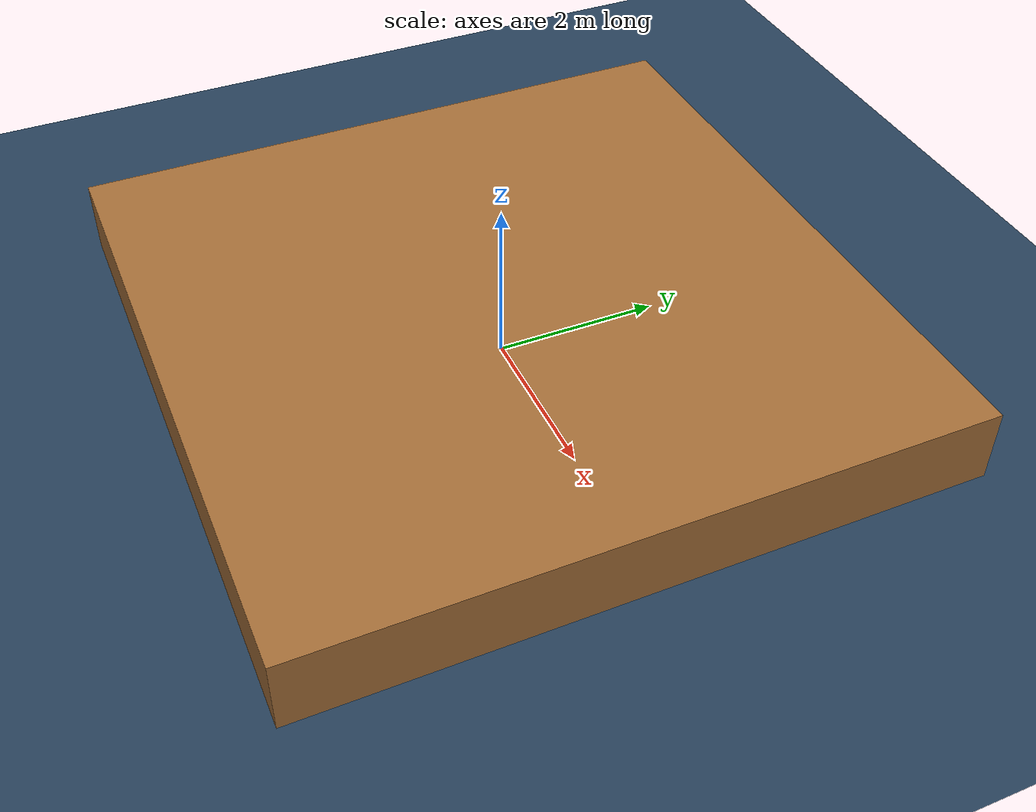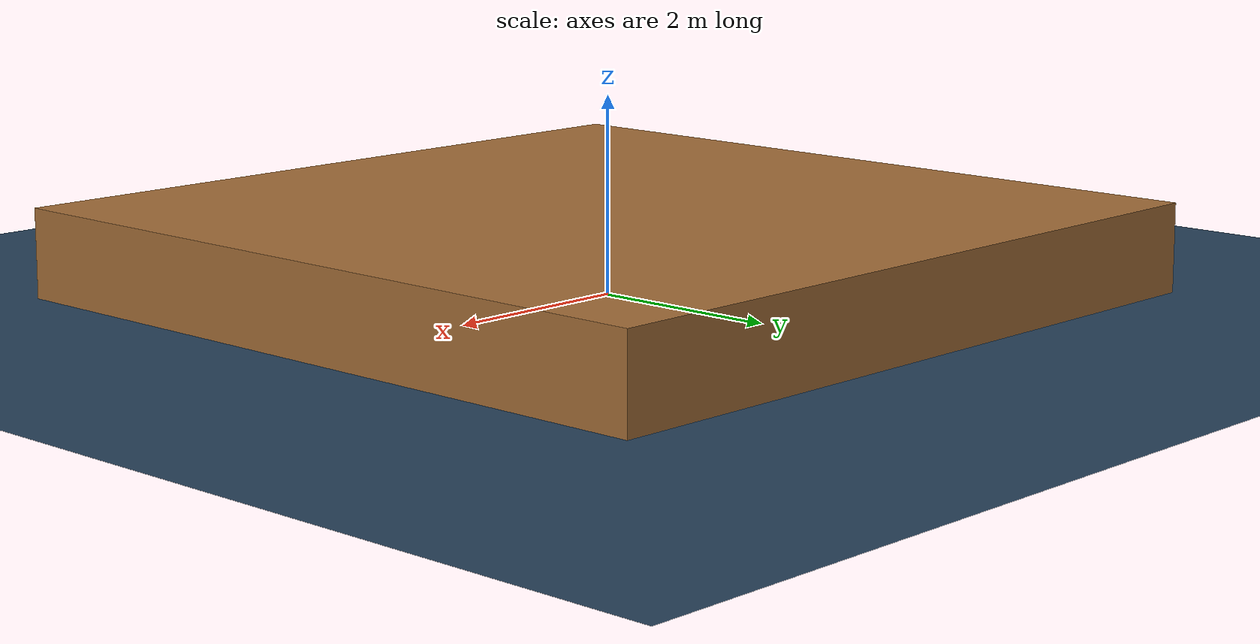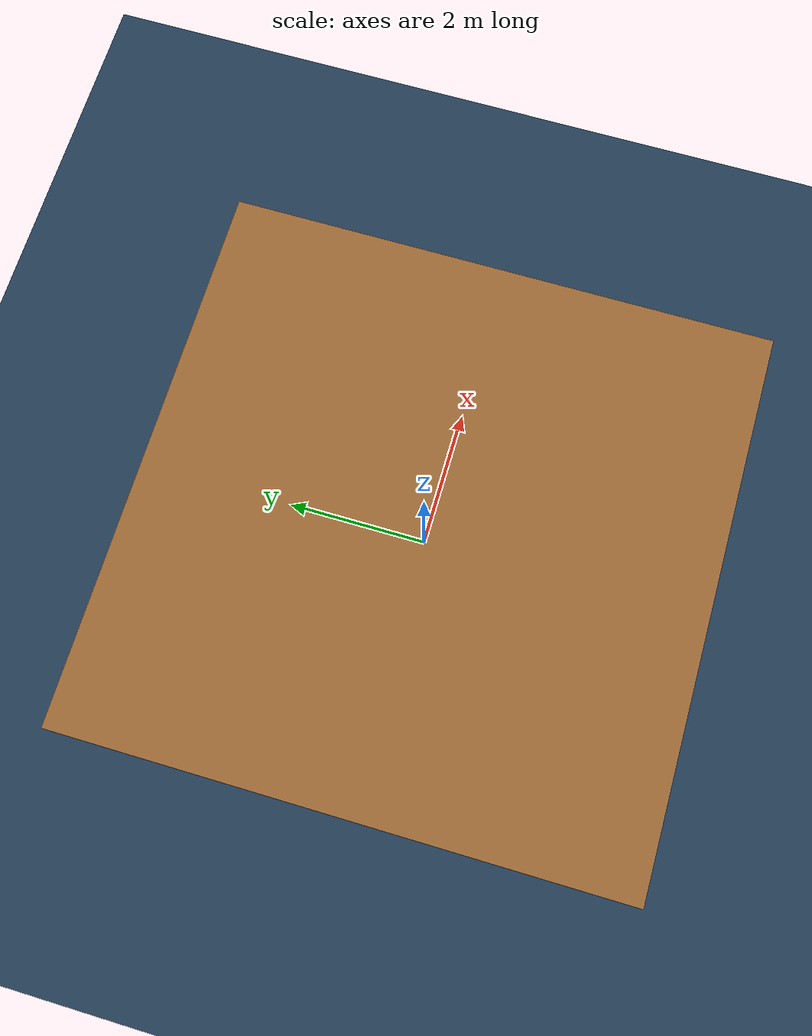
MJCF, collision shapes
<mujoco model="go2 scene">
  <include file="go2_mjx.xml"/>

  <statistic center="0 0 0.1" extent="0.8"/>

  <visual>
    <headlight diffuse="0.6 0.6 0.6" ambient="0.3 0.3 0.3" specular="0 0 0"/>
    <rgba haze="0.15 0.25 0.35 1"/>
    <global azimuth="-130" elevation="-20"/>
  </visual>

  <asset>
    <texture type="skybox" builtin="gradient" rgb1="0.3 0.5 0.7" rgb2="0 0 0" width="512" height="3072"/>
    <texture type="2d" name="groundplane" builtin="checker" mark="edge" rgb1="0.2 0.3 0.4" rgb2="0.1 0.2 0.3"
      markrgb="0.8 0.8 0.8" width="300" height="300"/>
    <material name="groundplane" texture="groundplane" texuniform="true" texrepeat="5 5" reflectance="0.2"/>
    <texture type="2d" name="pyramid" builtin="checker" mark="cross" rgb1="0.76 0.52 0.28" rgb2="0.52 0.34 0.16"
      markrgb="0.32 0.20 0.10" width="300" height="300"/>
    <material name="pyramid" texture="pyramid" texuniform="true" texrepeat="3 3" reflectance="0.05"/>
  </asset>

  <worldbody>
    <light pos="0 0 1.5" dir="0 0 -1" directional="true"/>
    <geom name="floor" size="0 0 0.05" type="plane" material="groundplane" friction="2.0 0.005 0.0001"/>
    <body name="pyr_00" pos="0 0 0.4">
      <inertial pos="0 0 0" mass="0.001" diaginertia="0.001 0.001 0.001"/>
      <geom name="pyr_00" type="box" size="4 4 0.5" material="pyramid" friction="2.0 0.005 0.0001"/>
    </body>
    <body name="pyr_01" pos="0 0 0.4">
      <inertial pos="0 0 0" mass="0.001" diaginertia="0.001 0.001 0.001"/>
      <geom name="pyr_01" type="box" size="4 4 0.5" material="pyramid" friction="2.0 0.005 0.0001"/>
    </body>
    <body name="pyr_02" pos="0 0 0.4">
      <inertial pos="0 0 0" mass="0.001" diaginertia="0.001 0.001 0.001"/>
      <geom name="pyr_02" type="box" size="4 4 0.5" material="pyramid" friction="2.0 0.005 0.0001"/>
    </body>
    <body name="pyr_03" pos="0 0 0.4">
      <inertial pos="0 0 0" mass="0.001" diaginertia="0.001 0.001 0.001"/>
      <geom name="pyr_03" type="box" size="4 4 0.5" material="pyramid" friction="2.0 0.005 0.0001"/>
    </body>
    <body name="pyr_04" pos="0 0 0.4">
      <inertial pos="0 0 0" mass="0.001" diaginertia="0.001 0.001 0.001"/>
      <geom name="pyr_04" type="box" size="4 4 0.5" material="pyramid" friction="2.0 0.005 0.0001"/>
    </body>
    <body name="pyr_05" pos="0 0 0.4">
      <inertial pos="0 0 0" mass="0.001" diaginertia="0.001 0.001 0.001"/>
      <geom name="pyr_05" type="box" size="4 4 0.5" material="pyramid" friction="2.0 0.005 0.0001"/>
    </body>
    <body name="pyr_06" pos="0 0 0.4">
      <inertial pos="0 0 0" mass="0.001" diaginertia="0.001 0.001 0.001"/>
      <geom name="pyr_06" type="box" size="4 4 0.5" material="pyramid" friction="2.0 0.005 0.0001"/>
    </body>
    <body name="pyr_07" pos="0 0 0.4">
      <inertial pos="0 0 0" mass="0.001" diaginertia="0.001 0.001 0.001"/>
      <geom name="pyr_07" type="box" size="4 4 0.5" material="pyramid" friction="2.0 0.005 0.0001"/>
    </body>
    <body name="pyr_08" pos="0 0 0.4">
      <inertial pos="0 0 0" mass="0.001" diaginertia="0.001 0.001 0.001"/>
      <geom name="pyr_08" type="box" size="4 4 0.5" material="pyramid" friction="2.0 0.005 0.0001"/>
    </body>
    <body name="pyr_09" pos="0 0 0.4">
      <inertial pos="0 0 0" mass="0.001" diaginertia="0.001 0.001 0.001"/>
      <geom name="pyr_09" type="box" size="4 4 0.5" material="pyramid" friction="2.0 0.005 0.0001"/>
    </body>
    <body name="pyr_10" pos="0 0 0.4">
      <inertial pos="0 0 0" mass="0.001" diaginertia="0.001 0.001 0.001"/>
      <geom name="pyr_10" type="box" size="4 4 0.5" material="pyramid" friction="2.0 0.005 0.0001"/>
    </body>
    <body name="pyr_11" pos="0 0 0.4">
      <inertial pos="0 0 0" mass="0.001" diaginertia="0.001 0.001 0.001"/>
      <geom name="pyr_11" type="box" size="4 4 0.5" material="pyramid" friction="2.0 0.005 0.0001"/>
    </body>
    <body name="pyr_12" pos="0 0 0.4">
      <inertial pos="0 0 0" mass="0.001" diaginertia="0.001 0.001 0.001"/>
      <geom name="pyr_12" type="box" size="4 4 0.5" material="pyramid" friction="2.0 0.005 0.0001"/>
    </body>
    <body name="pyr_13" pos="0 0 0.4">
      <inertial pos="0 0 0" mass="0.001" diaginertia="0.001 0.001 0.001"/>
      <geom name="pyr_13" type="box" size="4 4 0.5" material="pyramid" friction="2.0 0.005 0.0001"/>
    </body>
    <body name="pyr_14" pos="0 0 0.4">
      <inertial pos="0 0 0" mass="0.001" diaginertia="0.001 0.001 0.001"/>
      <geom name="pyr_14" type="box" size="4 4 0.5" material="pyramid" friction="2.0 0.005 0.0001"/>
    </body>
    <body name="pyr_15" pos="0 0 0.4">
      <inertial pos="0 0 0" mass="0.001" diaginertia="0.001 0.001 0.001"/>
      <geom name="pyr_15" type="box" size="4 4 0.5" material="pyramid" friction="2.0 0.005 0.0001"/>
    </body>
    <body name="pyr_16" pos="0 0 0.4">
      <inertial pos="0 0 0" mass="0.001" diaginertia="0.001 0.001 0.001"/>
      <geom name="pyr_16" type="box" size="4 4 0.5" material="pyramid" friction="2.0 0.005 0.0001"/>
    </body>
    <body name="pyr_17" pos="0 0 0.4">
      <inertial pos="0 0 0" mass="0.001" diaginertia="0.001 0.001 0.001"/>
      <geom name="pyr_17" type="box" size="4 4 0.5" material="pyramid" friction="2.0 0.005 0.0001"/>
    </body>
    <body name="pyr_18" pos="0 0 0.4">
      <inertial pos="0 0 0" mass="0.001" diaginertia="0.001 0.001 0.001"/>
      <geom name="pyr_18" type="box" size="4 4 0.5" material="pyramid" friction="2.0 0.005 0.0001"/>
    </body>
    <body name="pyr_19" pos="0 0 0.4">
      <inertial pos="0 0 0" mass="0.001" diaginertia="0.001 0.001 0.001"/>
      <geom name="pyr_19" type="box" size="4 4 0.5" material="pyramid" friction="2.0 0.005 0.0001"/>
    </body>
    <body name="pyr_20" pos="0 0 0.4">
      <inertial pos="0 0 0" mass="0.001" diaginertia="0.001 0.001 0.001"/>
      <geom name="pyr_20" type="box" size="4 4 0.5" material="pyramid" friction="2.0 0.005 0.0001"/>
    </body>
    <body name="pyr_21" pos="0 0 0.4">
      <inertial pos="0 0 0" mass="0.001" diaginertia="0.001 0.001 0.001"/>
      <geom name="pyr_21" type="box" size="4 4 0.5" material="pyramid" friction="2.0 0.005 0.0001"/>
    </body>
    <body name="pyr_22" pos="0 0 0.4">
      <inertial pos="0 0 0" mass="0.001" diaginertia="0.001 0.001 0.001"/>
      <geom name="pyr_22" type="box" size="4 4 0.5" material="pyramid" friction="2.0 0.005 0.0001"/>
    </body>
    <body name="pyr_23" pos="0 0 0.4">
      <inertial pos="0 0 0" mass="0.001" diaginertia="0.001 0.001 0.001"/>
      <geom name="pyr_23" type="box" size="4 4 0.5" material="pyramid" friction="2.0 0.005 0.0001"/>
    </body>
  </worldbody>
</mujoco>

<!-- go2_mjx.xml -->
<mujoco model="go2">
  <compiler angle="radian" meshdir="assets" autolimits="true"/>

  <option cone="pyramidal" impratio="100" iterations="50" ls_iterations="10">
    <flag eulerdamp="disable"/>
  </option>

  <default>
    <default class="go2">
      <geom friction="0.6" margin="0.001" condim="3"/>
      <joint axis="0 1 0" damping="2" armature="0.01"
             solreflimit="0.004 1" solimplimit="0.98 0.9999 0.0005 0.5 2"/>
      <!-- Unitree Go2 datasheet limits. ctrlrange bounds the command;
           forcerange bounds the force MuJoCo actually applies. -->
      <motor ctrlrange="-23.7 23.7" forcerange="-23.7 23.7"/>

      <default class="abduction">
        <joint axis="1 0 0" range="-1.0472 1.0472"/>
      </default>
      <default class="hip">
        <joint range="-1.5708 3.4907"/>
      </default>
      <default class="knee">
        <joint range="-2.7227 -0.83776"/>
        <motor ctrlrange="-45.43 45.43" forcerange="-45.43 45.43"/>
      </default>
      <default class="visual">
        <geom type="mesh" contype="0" conaffinity="0" group="2"/>
      </default>
      <default class="go2foot">
        <site group="1" pos="-0.002 0 -0.213"/>
        <geom rgba="0.231373 0.380392 0.705882 1"/>
      </default>
      <default class="collision">
        <geom group="3"/>
        <default class="foot">
          <geom size="0.0175" pos="-0.002 0 -0.213" priority="1" solref="0.01 1" solimp="0.9 0.95 0.001" condim="6"
            friction="1.2 0.02 0.01"/>
        </default>
      </default>
    </default>
  </default>

  <asset>
    <material name="metal" rgba=".9 .95 .95 1"/>
    <material name="black" rgba="0 0 0 1"/>
    <material name="white" rgba="1 1 1 1"/>
    <material name="gray" rgba="0.671705 0.692426 0.774270 1"/>

    <mesh file="base_0.obj"/>
    <mesh file="base_1.obj"/>
    <mesh file="base_2.obj"/>
    <mesh file="base_3.obj"/>
    <mesh file="base_4.obj"/>
    <mesh file="hip_0.obj"/>
    <mesh file="hip_1.obj"/>
    <mesh file="thigh_0.obj"/>
    <mesh file="thigh_1.obj"/>
    <mesh file="thigh_mirror_0.obj"/>
    <mesh file="thigh_mirror_1.obj"/>
    <mesh file="calf_0.obj"/>
    <mesh file="calf_1.obj"/>
    <mesh file="calf_mirror_0.obj"/>
    <mesh file="calf_mirror_1.obj"/>
    <mesh file="foot.obj"/>
  </asset>

  <worldbody>
    <body name="base" pos="0 0 0.445" childclass="go2">
      <camera name="track" pos="0.846 -1.465 0.916" xyaxes="0.866 0.500 0.000 -0.171 0.296 0.940" mode="trackcom"/>
      <inertial pos="0.021112 0 -0.005366" quat="-0.000543471 0.713435 -0.00173769 0.700719" mass="6.921"
        diaginertia="0.107027 0.0980771 0.0244531"/>
      <freejoint/>
      <geom mesh="base_0" material="black" class="visual"/>
      <geom mesh="base_1" material="black" class="visual"/>
      <geom mesh="base_2" material="black" class="visual"/>
      <geom mesh="base_3" material="white" class="visual"/>
      <geom mesh="base_4" material="gray" class="visual"/>
      <geom size="0.057 0.04675 0.057" class="collision"/>
      <geom size="0.05 0.045" pos="0.285 0 0.01" class="collision"/>
      <geom size="0.047" pos="0.293 0 -0.06" class="collision"/>
      <site name="imu" pos="-0.02557 0 0.04232"/>
      <body name="FL_hip" pos="0.1934 0.0465 0">
        <inertial pos="-0.0054 0.00194 -0.000105" quat="0.497014 0.499245 0.505462 0.498237" mass="0.678"
          diaginertia="0.00088403 0.000596003 0.000479967"/>
        <joint name="FL_hip_joint" class="abduction"/>
        <geom mesh="hip_0" material="metal" class="visual"/>
        <geom mesh="hip_1" material="gray" class="visual"/>
        <geom size="0.046 0.02" pos="0 0.08 0" quat="1 1 0 0" class="collision"/>
        <body name="FL_thigh" pos="0 0.0955 0">
          <inertial pos="-0.00374 -0.0223 -0.0327" quat="0.829533 0.0847635 -0.0200632 0.551623" mass="1.152"
            diaginertia="0.00594973 0.00584149 0.000878787"/>
          <joint name="FL_thigh_joint" class="hip"/>
          <geom mesh="thigh_0" material="metal" class="visual"/>
          <geom mesh="thigh_1" material="gray" class="visual"/>
          <geom size="0.017 0.01225 0.017" pos="-0.015 0 -0.1955" quat="0.707107 0 0.707107 0" class="collision"/>
          <body name="FL_calf" pos="0 0 -0.213">
            <inertial pos="0.00629595 -0.000622121 -0.141417" quat="0.710672 0.00154099 -0.00450087 0.703508"
              mass="0.241352" diaginertia="0.0014901 0.00146356 5.31397e-05"/>
            <joint name="FL_calf_joint" class="knee"/>
            <geom mesh="calf_0" material="gray" class="visual"/>
            <geom mesh="calf_1" material="black" class="visual"/>
            <geom size="0.012 0.06" pos="0.008 0 -0.06" quat="0.994493 0 -0.104807 0" class="collision"/>
            <geom size="0.011 0.0325" pos="0.02 0 -0.148" quat="0.999688 0 0.0249974 0" class="collision"/>
            <geom pos="0 0 -0.213" mesh="foot" class="visual" material="black"/>
            <geom name="FL" class="foot"/>
            <site name="FL_foot" class="go2foot"/>
          </body>
        </body>
      </body>
      <body name="FR_hip" pos="0.1934 -0.0465 0">
        <inertial pos="-0.0054 -0.00194 -0.000105" quat="0.498237 0.505462 0.499245 0.497014" mass="0.678"
          diaginertia="0.00088403 0.000596003 0.000479967"/>
        <joint name="FR_hip_joint" class="abduction"/>
        <geom mesh="hip_0" material="metal" class="visual" quat="4.63268e-05 1 0 0"/>
        <geom mesh="hip_1" material="gray" class="visual" quat="4.63268e-05 1 0 0"/>
        <geom size="0.046 0.02" pos="0 -0.08 0" quat="0.707107 0.707107 0 0" class="collision"/>
        <body name="FR_thigh" pos="0 -0.0955 0">
          <inertial pos="-0.00374 0.0223 -0.0327" quat="0.551623 -0.0200632 0.0847635 0.829533" mass="1.152"
            diaginertia="0.00594973 0.00584149 0.000878787"/>
          <joint name="FR_thigh_joint" class="hip"/>
          <geom mesh="thigh_mirror_0" material="metal" class="visual"/>
          <geom mesh="thigh_mirror_1" material="gray" class="visual"/>
          <geom size="0.017 0.01225 0.017" pos="-0.015 0 -0.1955" quat="0.707107 0 0.707107 0" class="collision"/>
          <body name="FR_calf" pos="0 0 -0.213">
            <inertial pos="0.00629595 0.000622121 -0.141417" quat="0.703508 -0.00450087 0.00154099 0.710672"
              mass="0.241352" diaginertia="0.0014901 0.00146356 5.31397e-05"/>
            <joint name="FR_calf_joint" class="knee"/>
            <geom mesh="calf_mirror_0" material="gray" class="visual"/>
            <geom mesh="calf_mirror_1" material="black" class="visual"/>
            <geom size="0.013 0.06" pos="0.01 0 -0.06" quat="0.995004 0 -0.0998334 0" class="collision"/>
            <geom size="0.011 0.0325" pos="0.02 0 -0.148" quat="0.999688 0 0.0249974 0" class="collision"/>
            <geom pos="0 0 -0.213" mesh="foot" class="visual" material="black"/>
            <geom name="FR" class="foot"/>
            <site name="FR_foot" class="go2foot"/>
          </body>
        </body>
      </body>
      <body name="RL_hip" pos="-0.1934 0.0465 0">
        <inertial pos="0.0054 0.00194 -0.000105" quat="0.505462 0.498237 0.497014 0.499245" mass="0.678"
          diaginertia="0.00088403 0.000596003 0.000479967"/>
        <joint name="RL_hip_joint" class="abduction"/>
        <geom mesh="hip_0" material="metal" class="visual" quat="4.63268e-05 0 1 0"/>
        <geom mesh="hip_1" material="gray" class="visual" quat="4.63268e-05 0 1 0"/>
        <geom size="0.046 0.02" pos="0 0.08 0" quat="0.707107 0.707107 0 0" class="collision"/>
        <body name="RL_thigh" pos="0 0.0955 0">
          <inertial pos="-0.00374 -0.0223 -0.0327" quat="0.829533 0.0847635 -0.0200632 0.551623" mass="1.152"
            diaginertia="0.00594973 0.00584149 0.000878787"/>
          <joint name="RL_thigh_joint" class="hip"/>
          <geom mesh="thigh_0" material="metal" class="visual"/>
          <geom mesh="thigh_1" material="gray" class="visual"/>
          <geom size="0.017 0.01225 0.017" pos="-0.015 0 -0.1955" quat="0.707107 0 0.707107 0" class="collision"/>
          <body name="RL_calf" pos="0 0 -0.213">
            <inertial pos="0.00629595 -0.000622121 -0.141417" quat="0.710672 0.00154099 -0.00450087 0.703508"
              mass="0.241352" diaginertia="0.0014901 0.00146356 5.31397e-05"/>
            <joint name="RL_calf_joint" class="knee"/>
            <geom mesh="calf_0" material="gray" class="visual"/>
            <geom mesh="calf_1" material="black" class="visual"/>
            <geom size="0.013 0.06" pos="0.01 0 -0.06" quat="0.995004 0 -0.0998334 0" class="collision"/>
            <geom size="0.011 0.0325" pos="0.02 0 -0.148" quat="0.999688 0 0.0249974 0" class="collision"/>
            <geom pos="0 0 -0.213" mesh="foot" class="visual" material="black"/>
            <geom name="RL" class="foot"/>
            <site name="RL_foot" class="go2foot"/>
          </body>
        </body>
      </body>
      <body name="RR_hip" pos="-0.1934 -0.0465 0">
        <inertial pos="0.0054 -0.00194 -0.000105" quat="0.499245 0.497014 0.498237 0.505462" mass="0.678"
          diaginertia="0.00088403 0.000596003 0.000479967"/>
        <joint name="RR_hip_joint" class="abduction"/>
        <geom mesh="hip_0" material="metal" class="visual" quat="2.14617e-09 4.63268e-05 4.63268e-05 -1"/>
        <geom mesh="hip_1" material="gray" class="visual" quat="2.14617e-09 4.63268e-05 4.63268e-05 -1"/>
        <geom size="0.046 0.02" pos="0 -0.08 0" quat="0.707107 0.707107 0 0" class="collision"/>
        <body name="RR_thigh" pos="0 -0.0955 0">
          <inertial pos="-0.00374 0.0223 -0.0327" quat="0.551623 -0.0200632 0.0847635 0.829533" mass="1.152"
            diaginertia="0.00594973 0.00584149 0.000878787"/>
          <joint name="RR_thigh_joint" class="hip"/>
          <geom mesh="thigh_mirror_0" material="metal" class="visual"/>
          <geom mesh="thigh_mirror_1" material="gray" class="visual"/>
          <geom size="0.017 0.01225 0.017" pos="-0.015 0 -0.1955" quat="0.707107 0 0.707107 0" class="collision"/>
          <body name="RR_calf" pos="0 0 -0.213">
            <inertial pos="0.00629595 0.000622121 -0.141417" quat="0.703508 -0.00450087 0.00154099 0.710672"
              mass="0.241352" diaginertia="0.0014901 0.00146356 5.31397e-05"/>
            <joint name="RR_calf_joint" class="knee"/>
            <geom mesh="calf_mirror_0" material="gray" class="visual"/>
            <geom mesh="calf_mirror_1" material="black" class="visual"/>
            <geom size="0.013 0.06" pos="0.01 0 -0.06" quat="0.995004 0 -0.0998334 0" class="collision"/>
            <geom size="0.011 0.0325" pos="0.02 0 -0.148" quat="0.999688 0 0.0249974 0" class="collision"/>
            <geom pos="0 0 -0.213" mesh="foot" class="visual" material="black"/>
            <geom name="RR" class="foot"/>
            <site name="RR_foot" class="go2foot"/>
          </body>
        </body>
      </body>
    </body>
  </worldbody>

  <actuator>
    <motor class="abduction" name="FL_hip" joint="FL_hip_joint"/>
    <motor class="hip" name="FL_thigh" joint="FL_thigh_joint"/>
    <motor class="knee" name="FL_calf" joint="FL_calf_joint"/>
    <motor class="abduction" name="FR_hip" joint="FR_hip_joint"/>
    <motor class="hip" name="FR_thigh" joint="FR_thigh_joint"/>
    <motor class="knee" name="FR_calf" joint="FR_calf_joint"/>
    <motor class="abduction" name="RL_hip" joint="RL_hip_joint"/>
    <motor class="hip" name="RL_thigh" joint="RL_thigh_joint"/>
    <motor class="knee" name="RL_calf" joint="RL_calf_joint"/>
    <motor class="abduction" name="RR_hip" joint="RR_hip_joint"/>
    <motor class="hip" name="RR_thigh" joint="RR_thigh_joint"/>
    <motor class="knee" name="RR_calf" joint="RR_calf_joint"/>
  </actuator>

  <sensor>
    <jointpos joint="FL_hip_joint" name="abduction_front_left_pos"/>
    <jointpos joint="FL_thigh_joint" name="hip_front_left_pos"/>
    <jointpos joint="FL_calf_joint" name="knee_front_left_pos"/>
    <jointpos joint="RL_hip_joint" name="abduction_hind_left_pos"/>
    <jointpos joint="RL_thigh_joint" name="hip_hind_left_pos"/>
    <jointpos joint="RL_calf_joint" name="knee_hind_left_pos"/>
    <jointpos joint="FR_hip_joint" name="abduction_front_right_pos"/>
    <jointpos joint="FR_thigh_joint" name="hip_front_right_pos"/>
    <jointpos joint="FR_calf_joint" name="knee_front_right_pos"/>
    <jointpos joint="RR_hip_joint" name="abduction_hind_right_pos"/>
    <jointpos joint="RR_thigh_joint" name="hip_hind_right_pos"/>
    <jointpos joint="RR_calf_joint" name="knee_hind_right_pos"/>
    <jointvel joint="FL_hip_joint" name="abduction_front_left_vel"/>
    <jointvel joint="FL_thigh_joint" name="hip_front_left_vel"/>
    <jointvel joint="FL_calf_joint" name="knee_front_left_vel"/>
    <jointvel joint="RL_hip_joint" name="abduction_hind_left_vel"/>
    <jointvel joint="RL_thigh_joint" name="hip_hind_left_vel"/>
    <jointvel joint="RL_calf_joint" name="knee_hind_left_vel"/>
    <jointvel joint="FR_hip_joint" name="abduction_front_right_vel"/>
    <jointvel joint="FR_thigh_joint" name="hip_front_right_vel"/>
    <jointvel joint="FR_calf_joint" name="knee_front_right_vel"/>
    <jointvel joint="RR_hip_joint" name="abduction_hind_right_vel"/>
    <jointvel joint="RR_thigh_joint" name="hip_hind_right_vel"/>
    <jointvel joint="RR_calf_joint" name="knee_hind_right_vel"/>
    <gyro site="imu" name="gyro"/>
    <accelerometer site="imu" name="accelerometer"/>
    <framequat objtype="site" objname="imu" name="orientation"/>
    <framepos objtype="site" objname="imu" name="global_position"/>
    <framelinvel objtype="site" objname="imu" name="global_linvel"/>
    <frameangvel objtype="site" objname="imu" name="global_angvel"/>
  </sensor>

</mujoco>
